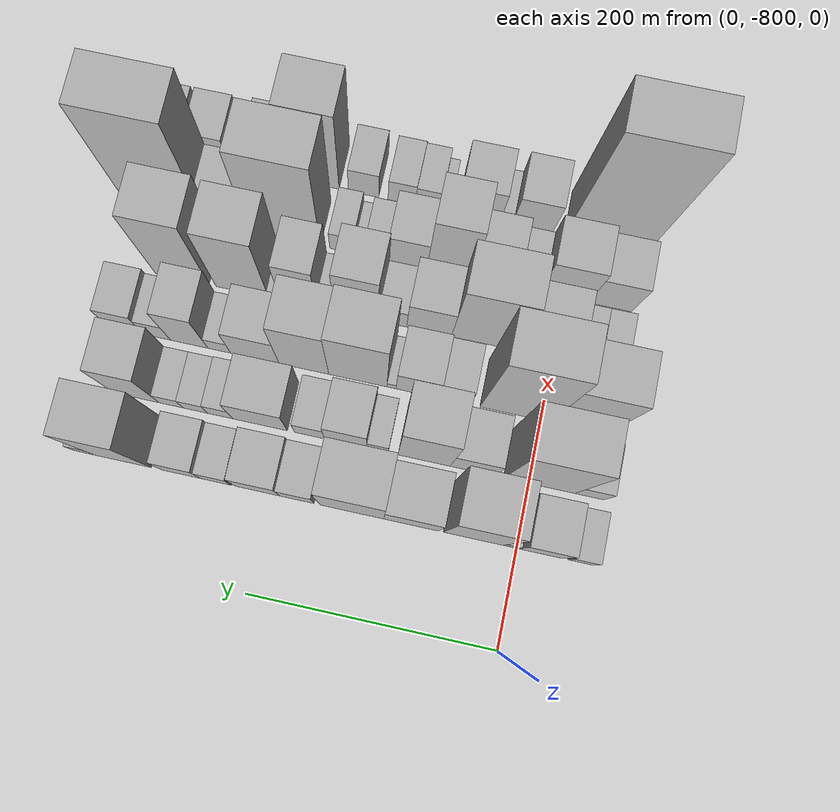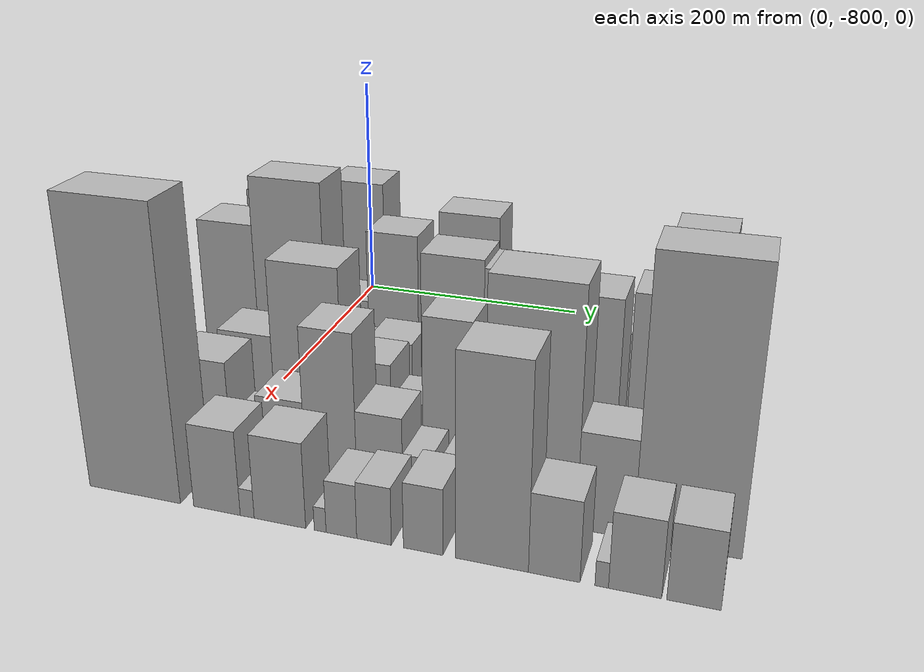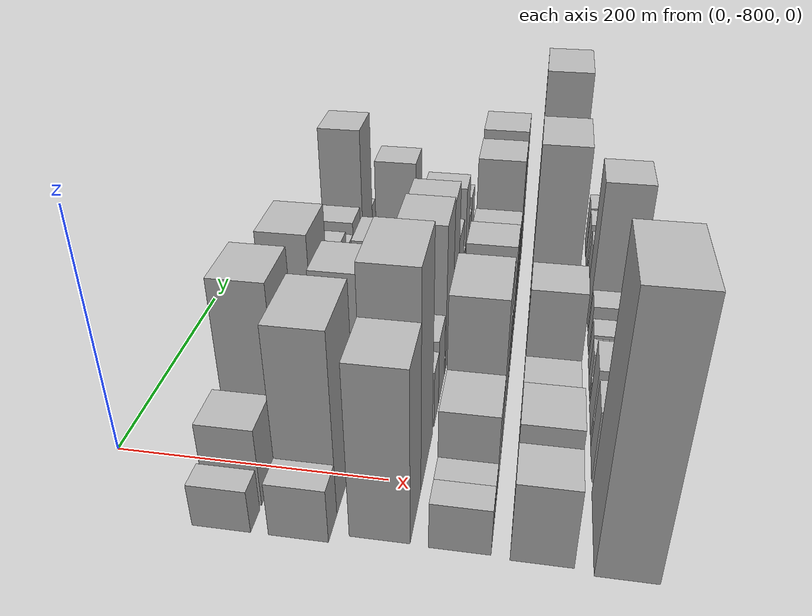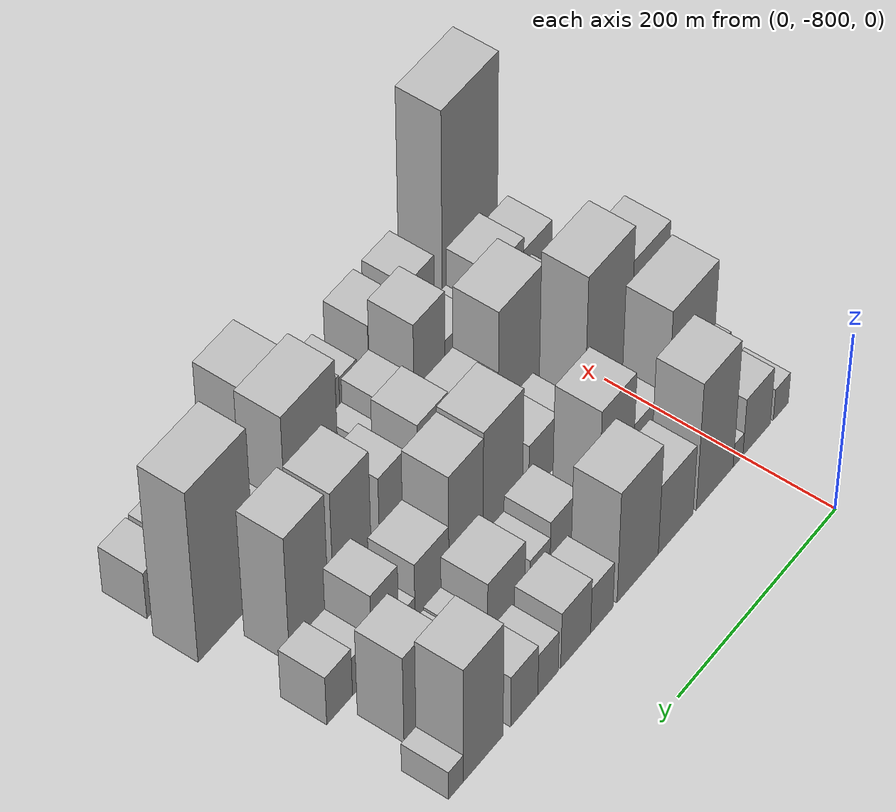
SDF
<sdf version="1.6">
 <world name="default">
  <model name="building_1">
   <static>1</static>
   <pose>100.0000 -850.1678 0 0.000000 0.000000 0.000000</pose>
   <link name="link">
    <pose>0 0 18.00 0 0 0</pose>
    <collision name="collision"><geometry><box><size>40.0000 19.6644 36.0000</size></box></geometry></collision>
    <visual name="visual">
     <cast_shadows>0</cast_shadows>
     <geometry><box><size>40.0000 19.6644 36.0000</size></box></geometry>
     <material>
      <script>
       <uri>model://HANNAS_wall/materials/scripts</uri>
       <uri>model://HANNAS_wall/materials/textures</uri>
       <name>vrc/HANNAS_wall</name>
      </script>
     </material>
    </visual>
   </link>
  </model>
  <model name="building_2">
   <static>1</static>
   <pose>100.0000 -818.5363 0 0.000000 0.000000 0.000000</pose>
   <link name="link">
    <pose>0 0 33.00 0 0 0</pose>
    <collision name="collision"><geometry><box><size>40.0000 35.5986 66.0000</size></box></geometry></collision>
    <visual name="visual">
     <cast_shadows>0</cast_shadows>
     <geometry><box><size>40.0000 35.5986 66.0000</size></box></geometry>
     <material>
      <script>
       <uri>model://HANNAS_wall/materials/scripts</uri>
       <uri>model://HANNAS_wall/materials/textures</uri>
       <name>vrc/HANNAS_wall</name>
      </script>
     </material>
    </visual>
   </link>
  </model>
  <model name="building_3">
   <static>1</static>
   <pose>100.0000 -794.4167 0 0.000000 0.000000 0.000000</pose>
   <link name="link">
    <pose>0 0 13.50 0 0 0</pose>
    <collision name="collision"><geometry><box><size>40.0000 12.6405 27.0000</size></box></geometry></collision>
    <visual name="visual">
     <cast_shadows>0</cast_shadows>
     <geometry><box><size>40.0000 12.6405 27.0000</size></box></geometry>
     <material>
      <script>
       <uri>model://HANNAS_wall/materials/scripts</uri>
       <uri>model://HANNAS_wall/materials/textures</uri>
       <name>vrc/HANNAS_wall</name>
      </script>
     </material>
    </visual>
   </link>
  </model>
  <model name="building_4">
   <static>1</static>
   <pose>100.0000 -764.4303 0 0.000000 0.000000 0.000000</pose>
   <link name="link">
    <pose>0 0 73.50 0 0 0</pose>
    <collision name="collision"><geometry><box><size>40.0000 47.3323 147.0000</size></box></geometry></collision>
    <visual name="visual">
     <cast_shadows>0</cast_shadows>
     <geometry><box><size>40.0000 47.3323 147.0000</size></box></geometry>
     <material>
      <script>
       <uri>model://HANNAS_wall/materials/scripts</uri>
       <uri>model://HANNAS_wall/materials/textures</uri>
       <name>vrc/HANNAS_wall</name>
      </script>
     </material>
    </visual>
   </link>
  </model>
  <model name="building_5">
   <static>1</static>
   <pose>100.0000 -714.7131 0 0.000000 0.000000 0.000000</pose>
   <link name="link">
    <pose>0 0 40.50 0 0 0</pose>
    <collision name="collision"><geometry><box><size>40.0000 44.1021 81.0000</size></box></geometry></collision>
    <visual name="visual">
     <cast_shadows>0</cast_shadows>
     <geometry><box><size>40.0000 44.1021 81.0000</size></box></geometry>
     <material>
      <script>
       <uri>model://HANNAS_wall/materials/scripts</uri>
       <uri>model://HANNAS_wall/materials/textures</uri>
       <name>vrc/HANNAS_wall</name>
      </script>
     </material>
    </visual>
   </link>
  </model>
  <model name="building_6">
   <static>1</static>
   <pose>100.0000 -666.9803 0 0.000000 0.000000 0.000000</pose>
   <link name="link">
    <pose>0 0 64.50 0 0 0</pose>
    <collision name="collision"><geometry><box><size>40.0000 51.3636 129.0000</size></box></geometry></collision>
    <visual name="visual">
     <cast_shadows>0</cast_shadows>
     <geometry><box><size>40.0000 51.3636 129.0000</size></box></geometry>
     <material>
      <script>
       <uri>model://HANNAS_wall/materials/scripts</uri>
       <uri>model://HANNAS_wall/materials/textures</uri>
       <name>vrc/HANNAS_wall</name>
      </script>
     </material>
    </visual>
   </link>
  </model>
  <model name="building_7">
   <static>1</static>
   <pose>100.0000 -622.5360 0 0.000000 0.000000 0.000000</pose>
   <link name="link">
    <pose>0 0 27.00 0 0 0</pose>
    <collision name="collision"><geometry><box><size>40.0000 27.5249 54.0000</size></box></geometry></collision>
    <visual name="visual">
     <cast_shadows>0</cast_shadows>
     <geometry><box><size>40.0000 27.5249 54.0000</size></box></geometry>
     <material>
      <script>
       <uri>model://HANNAS_wall/materials/scripts</uri>
       <uri>model://HANNAS_wall/materials/textures</uri>
       <name>vrc/HANNAS_wall</name>
      </script>
     </material>
    </visual>
   </link>
  </model>
  <model name="building_8">
   <static>1</static>
   <pose>100.0000 -590.5916 0 0.000000 0.000000 0.000000</pose>
   <link name="link">
    <pose>0 0 33.00 0 0 0</pose>
    <collision name="collision"><geometry><box><size>40.0000 36.3639 66.0000</size></box></geometry></collision>
    <visual name="visual">
     <cast_shadows>0</cast_shadows>
     <geometry><box><size>40.0000 36.3639 66.0000</size></box></geometry>
     <material>
      <script>
       <uri>model://HANNAS_wall/materials/scripts</uri>
       <uri>model://HANNAS_wall/materials/textures</uri>
       <name>vrc/HANNAS_wall</name>
      </script>
     </material>
    </visual>
   </link>
  </model>
  <model name="building_9">
   <static>1</static>
   <pose>100.0000 -557.1336 0 0.000000 0.000000 0.000000</pose>
   <link name="link">
    <pose>0 0 24.00 0 0 0</pose>
    <collision name="collision"><geometry><box><size>40.0000 24.5523 48.0000</size></box></geometry></collision>
    <visual name="visual">
     <cast_shadows>0</cast_shadows>
     <geometry><box><size>40.0000 24.5523 48.0000</size></box></geometry>
     <material>
      <script>
       <uri>model://HANNAS_wall/materials/scripts</uri>
       <uri>model://HANNAS_wall/materials/textures</uri>
       <name>vrc/HANNAS_wall</name>
      </script>
     </material>
    </visual>
   </link>
  </model>
  <model name="building_10">
   <static>1</static>
   <pose>100.0000 -528.5953 0 0.000000 0.000000 0.000000</pose>
   <link name="link">
    <pose>0 0 30.00 0 0 0</pose>
    <collision name="collision"><geometry><box><size>40.0000 32.5243 60.0000</size></box></geometry></collision>
    <visual name="visual">
     <cast_shadows>0</cast_shadows>
     <geometry><box><size>40.0000 32.5243 60.0000</size></box></geometry>
     <material>
      <script>
       <uri>model://HANNAS_wall/materials/scripts</uri>
       <uri>model://HANNAS_wall/materials/textures</uri>
       <name>vrc/HANNAS_wall</name>
      </script>
     </material>
    </visual>
   </link>
  </model>
  <model name="building_11">
   <static>1</static>
   <pose>100.0000 -480.1072 0 0.000000 0.000000 0.000000</pose>
   <link name="link">
    <pose>0 0 67.50 0 0 0</pose>
    <collision name="collision"><geometry><box><size>40.0000 46.4518 135.0000</size></box></geometry></collision>
    <visual name="visual">
     <cast_shadows>0</cast_shadows>
     <geometry><box><size>40.0000 46.4518 135.0000</size></box></geometry>
     <material>
      <script>
       <uri>model://HANNAS_wall/materials/scripts</uri>
       <uri>model://HANNAS_wall/materials/textures</uri>
       <name>vrc/HANNAS_wall</name>
      </script>
     </material>
    </visual>
   </link>
  </model>
  <model name="building_12">
   <static>1</static>
   <pose>100.0000 -448.1927 0 0.000000 0.000000 0.000000</pose>
   <link name="link">
    <pose>0 0 16.50 0 0 0</pose>
    <collision name="collision"><geometry><box><size>40.0000 17.3773 33.0000</size></box></geometry></collision>
    <visual name="visual">
     <cast_shadows>0</cast_shadows>
     <geometry><box><size>40.0000 17.3773 33.0000</size></box></geometry>
     <material>
      <script>
       <uri>model://HANNAS_wall/materials/scripts</uri>
       <uri>model://HANNAS_wall/materials/textures</uri>
       <name>vrc/HANNAS_wall</name>
      </script>
     </material>
    </visual>
   </link>
  </model>
  <model name="building_52">
   <static>1</static>
   <pose>152.0000 -848.3504 0 0.000000 0.000000 0.000000</pose>
   <link name="link">
    <pose>0 0 22.50 0 0 0</pose>
    <collision name="collision"><geometry><box><size>40.0000 23.2992 45.0000</size></box></geometry></collision>
    <visual name="visual">
     <cast_shadows>0</cast_shadows>
     <geometry><box><size>40.0000 23.2992 45.0000</size></box></geometry>
     <material>
      <script>
       <uri>model://HANNAS_wall/materials/scripts</uri>
       <uri>model://HANNAS_wall/materials/textures</uri>
       <name>vrc/HANNAS_wall</name>
      </script>
     </material>
    </visual>
   </link>
  </model>
  <model name="building_53">
   <static>1</static>
   <pose>152.0000 -807.8671 0 0.000000 0.000000 0.000000</pose>
   <link name="link">
    <pose>0 0 75.00 0 0 0</pose>
    <collision name="collision"><geometry><box><size>40.0000 57.6673 150.0000</size></box></geometry></collision>
    <visual name="visual">
     <cast_shadows>0</cast_shadows>
     <geometry><box><size>40.0000 57.6673 150.0000</size></box></geometry>
     <material>
      <script>
       <uri>model://HANNAS_wall/materials/scripts</uri>
       <uri>model://HANNAS_wall/materials/textures</uri>
       <name>vrc/HANNAS_wall</name>
      </script>
     </material>
    </visual>
   </link>
  </model>
  <model name="building_54">
   <static>1</static>
   <pose>152.0000 -753.8461 0 0.000000 0.000000 0.000000</pose>
   <link name="link">
    <pose>0 0 33.00 0 0 0</pose>
    <collision name="collision"><geometry><box><size>40.0000 36.3747 66.0000</size></box></geometry></collision>
    <visual name="visual">
     <cast_shadows>0</cast_shadows>
     <geometry><box><size>40.0000 36.3747 66.0000</size></box></geometry>
     <material>
      <script>
       <uri>model://HANNAS_wall/materials/scripts</uri>
       <uri>model://HANNAS_wall/materials/textures</uri>
       <name>vrc/HANNAS_wall</name>
      </script>
     </material>
    </visual>
   </link>
  </model>
  <model name="building_55">
   <static>1</static>
   <pose>152.0000 -714.4070 0 0.000000 0.000000 0.000000</pose>
   <link name="link">
    <pose>0 0 63.00 0 0 0</pose>
    <collision name="collision"><geometry><box><size>40.0000 42.5034 126.0000</size></box></geometry></collision>
    <visual name="visual">
     <cast_shadows>0</cast_shadows>
     <geometry><box><size>40.0000 42.5034 126.0000</size></box></geometry>
     <material>
      <script>
       <uri>model://HANNAS_wall/materials/scripts</uri>
       <uri>model://HANNAS_wall/materials/textures</uri>
       <name>vrc/HANNAS_wall</name>
      </script>
     </material>
    </visual>
   </link>
  </model>
  <model name="building_56">
   <static>1</static>
   <pose>152.0000 -676.4483 0 0.000000 0.000000 0.000000</pose>
   <link name="link">
    <pose>0 0 15.00 0 0 0</pose>
    <collision name="collision"><geometry><box><size>40.0000 17.4140 30.0000</size></box></geometry></collision>
    <visual name="visual">
     <cast_shadows>0</cast_shadows>
     <geometry><box><size>40.0000 17.4140 30.0000</size></box></geometry>
     <material>
      <script>
       <uri>model://HANNAS_wall/materials/scripts</uri>
       <uri>model://HANNAS_wall/materials/textures</uri>
       <name>vrc/HANNAS_wall</name>
      </script>
     </material>
    </visual>
   </link>
  </model>
  <model name="building_57">
   <static>1</static>
   <pose>152.0000 -650.3574 0 0.000000 0.000000 0.000000</pose>
   <link name="link">
    <pose>0 0 31.50 0 0 0</pose>
    <collision name="collision"><geometry><box><size>40.0000 34.7679 63.0000</size></box></geometry></collision>
    <visual name="visual">
     <cast_shadows>0</cast_shadows>
     <geometry><box><size>40.0000 34.7679 63.0000</size></box></geometry>
     <material>
      <script>
       <uri>model://HANNAS_wall/materials/scripts</uri>
       <uri>model://HANNAS_wall/materials/textures</uri>
       <name>vrc/HANNAS_wall</name>
      </script>
     </material>
    </visual>
   </link>
  </model>
  <model name="building_58">
   <static>1</static>
   <pose>152.0000 -620.7284 0 0.000000 0.000000 0.000000</pose>
   <link name="link">
    <pose>0 0 22.50 0 0 0</pose>
    <collision name="collision"><geometry><box><size>40.0000 24.4899 45.0000</size></box></geometry></collision>
    <visual name="visual">
     <cast_shadows>0</cast_shadows>
     <geometry><box><size>40.0000 24.4899 45.0000</size></box></geometry>
     <material>
      <script>
       <uri>model://HANNAS_wall/materials/scripts</uri>
       <uri>model://HANNAS_wall/materials/textures</uri>
       <name>vrc/HANNAS_wall</name>
      </script>
     </material>
    </visual>
   </link>
  </model>
  <model name="building_59">
   <static>1</static>
   <pose>152.0000 -579.9967 0 0.000000 0.000000 0.000000</pose>
   <link name="link">
    <pose>0 0 37.50 0 0 0</pose>
    <collision name="collision"><geometry><box><size>40.0000 44.9736 75.0000</size></box></geometry></collision>
    <visual name="visual">
     <cast_shadows>0</cast_shadows>
     <geometry><box><size>40.0000 44.9736 75.0000</size></box></geometry>
     <material>
      <script>
       <uri>model://HANNAS_wall/materials/scripts</uri>
       <uri>model://HANNAS_wall/materials/textures</uri>
       <name>vrc/HANNAS_wall</name>
      </script>
     </material>
    </visual>
   </link>
  </model>
  <model name="building_60">
   <static>1</static>
   <pose>152.0000 -547.1147 0 0.000000 0.000000 0.000000</pose>
   <link name="link">
    <pose>0 0 19.50 0 0 0</pose>
    <collision name="collision"><geometry><box><size>40.0000 20.7903 39.0000</size></box></geometry></collision>
    <visual name="visual">
     <cast_shadows>0</cast_shadows>
     <geometry><box><size>40.0000 20.7903 39.0000</size></box></geometry>
     <material>
      <script>
       <uri>model://HANNAS_wall/materials/scripts</uri>
       <uri>model://HANNAS_wall/materials/textures</uri>
       <name>vrc/HANNAS_wall</name>
      </script>
     </material>
    </visual>
   </link>
  </model>
  <model name="building_61">
   <static>1</static>
   <pose>152.0000 -526.5225 0 0.000000 0.000000 0.000000</pose>
   <link name="link">
    <pose>0 0 18.00 0 0 0</pose>
    <collision name="collision"><geometry><box><size>40.0000 20.3941 36.0000</size></box></geometry></collision>
    <visual name="visual">
     <cast_shadows>0</cast_shadows>
     <geometry><box><size>40.0000 20.3941 36.0000</size></box></geometry>
     <material>
      <script>
       <uri>model://HANNAS_wall/materials/scripts</uri>
       <uri>model://HANNAS_wall/materials/textures</uri>
       <name>vrc/HANNAS_wall</name>
      </script>
     </material>
    </visual>
   </link>
  </model>
  <model name="building_62">
   <static>1</static>
   <pose>152.0000 -506.3344 0 0.000000 0.000000 0.000000</pose>
   <link name="link">
    <pose>0 0 18.00 0 0 0</pose>
    <collision name="collision"><geometry><box><size>40.0000 19.9822 36.0000</size></box></geometry></collision>
    <visual name="visual">
     <cast_shadows>0</cast_shadows>
     <geometry><box><size>40.0000 19.9822 36.0000</size></box></geometry>
     <material>
      <script>
       <uri>model://HANNAS_wall/materials/scripts</uri>
       <uri>model://HANNAS_wall/materials/textures</uri>
       <name>vrc/HANNAS_wall</name>
      </script>
     </material>
    </visual>
   </link>
  </model>
  <model name="building_63">
   <static>1</static>
   <pose>152.0000 -477.5877 0 0.000000 0.000000 0.000000</pose>
   <link name="link">
    <pose>0 0 51.00 0 0 0</pose>
    <collision name="collision"><geometry><box><size>40.0000 37.5112 102.0000</size></box></geometry></collision>
    <visual name="visual">
     <cast_shadows>0</cast_shadows>
     <geometry><box><size>40.0000 37.5112 102.0000</size></box></geometry>
     <material>
      <script>
       <uri>model://HANNAS_wall/materials/scripts</uri>
       <uri>model://HANNAS_wall/materials/textures</uri>
       <name>vrc/HANNAS_wall</name>
      </script>
     </material>
    </visual>
   </link>
  </model>
  <model name="building_98">
   <static>1</static>
   <pose>204.0000 -829.9922 0 0.000000 0.000000 0.000000</pose>
   <link name="link">
    <pose>0 0 70.50 0 0 0</pose>
    <collision name="collision"><geometry><box><size>40.0000 46.0157 141.0000</size></box></geometry></collision>
    <visual name="visual">
     <cast_shadows>0</cast_shadows>
     <geometry><box><size>40.0000 46.0157 141.0000</size></box></geometry>
     <material>
      <script>
       <uri>model://HANNAS_wall/materials/scripts</uri>
       <uri>model://HANNAS_wall/materials/textures</uri>
       <name>vrc/HANNAS_wall</name>
      </script>
     </material>
    </visual>
   </link>
  </model>
  <model name="building_99">
   <static>1</static>
   <pose>204.0000 -778.2849 0 0.000000 0.000000 0.000000</pose>
   <link name="link">
    <pose>0 0 90.00 0 0 0</pose>
    <collision name="collision"><geometry><box><size>40.0000 57.3989 180.0000</size></box></geometry></collision>
    <visual name="visual">
     <cast_shadows>0</cast_shadows>
     <geometry><box><size>40.0000 57.3989 180.0000</size></box></geometry>
     <material>
      <script>
       <uri>model://HANNAS_wall/materials/scripts</uri>
       <uri>model://HANNAS_wall/materials/textures</uri>
       <name>vrc/HANNAS_wall</name>
      </script>
     </material>
    </visual>
   </link>
  </model>
  <model name="building_100">
   <static>1</static>
   <pose>204.0000 -728.6867 0 0.000000 0.000000 0.000000</pose>
   <link name="link">
    <pose>0 0 25.50 0 0 0</pose>
    <collision name="collision"><geometry><box><size>40.0000 25.7973 51.0000</size></box></geometry></collision>
    <visual name="visual">
     <cast_shadows>0</cast_shadows>
     <geometry><box><size>40.0000 25.7973 51.0000</size></box></geometry>
     <material>
      <script>
       <uri>model://HANNAS_wall/materials/scripts</uri>
       <uri>model://HANNAS_wall/materials/textures</uri>
       <name>vrc/HANNAS_wall</name>
      </script>
     </material>
    </visual>
   </link>
  </model>
  <model name="building_101">
   <static>1</static>
   <pose>204.0000 -698.0632 0 0.000000 0.000000 0.000000</pose>
   <link name="link">
    <pose>0 0 30.00 0 0 0</pose>
    <collision name="collision"><geometry><box><size>40.0000 35.4496 60.0000</size></box></geometry></collision>
    <visual name="visual">
     <cast_shadows>0</cast_shadows>
     <geometry><box><size>40.0000 35.4496 60.0000</size></box></geometry>
     <material>
      <script>
       <uri>model://HANNAS_wall/materials/scripts</uri>
       <uri>model://HANNAS_wall/materials/textures</uri>
       <name>vrc/HANNAS_wall</name>
      </script>
     </material>
    </visual>
   </link>
  </model>
  <model name="building_102">
   <static>1</static>
   <pose>204.0000 -676.5887 0 0.000000 0.000000 0.000000</pose>
   <link name="link">
    <pose>0 0 7.50 0 0 0</pose>
    <collision name="collision"><geometry><box><size>40.0000 7.4994 15.0000</size></box></geometry></collision>
    <visual name="visual">
     <cast_shadows>0</cast_shadows>
     <geometry><box><size>40.0000 7.4994 15.0000</size></box></geometry>
     <material>
      <script>
       <uri>model://HANNAS_wall/materials/scripts</uri>
       <uri>model://HANNAS_wall/materials/textures</uri>
       <name>vrc/HANNAS_wall</name>
      </script>
     </material>
    </visual>
   </link>
  </model>
  <model name="building_103">
   <static>1</static>
   <pose>204.0000 -648.7740 0 0.000000 0.000000 0.000000</pose>
   <link name="link">
    <pose>0 0 67.50 0 0 0</pose>
    <collision name="collision"><geometry><box><size>40.0000 48.1301 135.0000</size></box></geometry></collision>
    <visual name="visual">
     <cast_shadows>0</cast_shadows>
     <geometry><box><size>40.0000 48.1301 135.0000</size></box></geometry>
     <material>
      <script>
       <uri>model://HANNAS_wall/materials/scripts</uri>
       <uri>model://HANNAS_wall/materials/textures</uri>
       <name>vrc/HANNAS_wall</name>
      </script>
     </material>
    </visual>
   </link>
  </model>
  <model name="building_104">
   <static>1</static>
   <pose>204.0000 -604.0319 0 0.000000 0.000000 0.000000</pose>
   <link name="link">
    <pose>0 0 64.50 0 0 0</pose>
    <collision name="collision"><geometry><box><size>40.0000 41.3541 129.0000</size></box></geometry></collision>
    <visual name="visual">
     <cast_shadows>0</cast_shadows>
     <geometry><box><size>40.0000 41.3541 129.0000</size></box></geometry>
     <material>
      <script>
       <uri>model://HANNAS_wall/materials/scripts</uri>
       <uri>model://HANNAS_wall/materials/textures</uri>
       <name>vrc/HANNAS_wall</name>
      </script>
     </material>
    </visual>
   </link>
  </model>
  <model name="building_105">
   <static>1</static>
   <pose>204.0000 -563.1245 0 0.000000 0.000000 0.000000</pose>
   <link name="link">
    <pose>0 0 36.00 0 0 0</pose>
    <collision name="collision"><geometry><box><size>40.0000 40.4606 72.0000</size></box></geometry></collision>
    <visual name="visual">
     <cast_shadows>0</cast_shadows>
     <geometry><box><size>40.0000 40.4606 72.0000</size></box></geometry>
     <material>
      <script>
       <uri>model://HANNAS_wall/materials/scripts</uri>
       <uri>model://HANNAS_wall/materials/textures</uri>
       <name>vrc/HANNAS_wall</name>
      </script>
     </material>
    </visual>
   </link>
  </model>
  <model name="building_106">
   <static>1</static>
   <pose>204.0000 -533.3424 0 0.000000 0.000000 0.000000</pose>
   <link name="link">
    <pose>0 0 16.50 0 0 0</pose>
    <collision name="collision"><geometry><box><size>40.0000 19.1036 33.0000</size></box></geometry></collision>
    <visual name="visual">
     <cast_shadows>0</cast_shadows>
     <geometry><box><size>40.0000 19.1036 33.0000</size></box></geometry>
     <material>
      <script>
       <uri>model://HANNAS_wall/materials/scripts</uri>
       <uri>model://HANNAS_wall/materials/textures</uri>
       <name>vrc/HANNAS_wall</name>
      </script>
     </material>
    </visual>
   </link>
  </model>
  <model name="building_107">
   <static>1</static>
   <pose>204.0000 -508.0473 0 0.000000 0.000000 0.000000</pose>
   <link name="link">
    <pose>0 0 46.50 0 0 0</pose>
    <collision name="collision"><geometry><box><size>40.0000 31.4866 93.0000</size></box></geometry></collision>
    <visual name="visual">
     <cast_shadows>0</cast_shadows>
     <geometry><box><size>40.0000 31.4866 93.0000</size></box></geometry>
     <material>
      <script>
       <uri>model://HANNAS_wall/materials/scripts</uri>
       <uri>model://HANNAS_wall/materials/textures</uri>
       <name>vrc/HANNAS_wall</name>
      </script>
     </material>
    </visual>
   </link>
  </model>
  <model name="building_108">
   <static>1</static>
   <pose>204.0000 -480.8521 0 0.000000 0.000000 0.000000</pose>
   <link name="link">
    <pose>0 0 22.50 0 0 0</pose>
    <collision name="collision"><geometry><box><size>40.0000 22.9038 45.0000</size></box></geometry></collision>
    <visual name="visual">
     <cast_shadows>0</cast_shadows>
     <geometry><box><size>40.0000 22.9038 45.0000</size></box></geometry>
     <material>
      <script>
       <uri>model://HANNAS_wall/materials/scripts</uri>
       <uri>model://HANNAS_wall/materials/textures</uri>
       <name>vrc/HANNAS_wall</name>
      </script>
     </material>
    </visual>
   </link>
  </model>
  <model name="building_109">
   <static>1</static>
   <pose>204.0000 -454.4886 0 0.000000 0.000000 0.000000</pose>
   <link name="link">
    <pose>0 0 28.50 0 0 0</pose>
    <collision name="collision"><geometry><box><size>40.0000 29.8233 57.0000</size></box></geometry></collision>
    <visual name="visual">
     <cast_shadows>0</cast_shadows>
     <geometry><box><size>40.0000 29.8233 57.0000</size></box></geometry>
     <material>
      <script>
       <uri>model://HANNAS_wall/materials/scripts</uri>
       <uri>model://HANNAS_wall/materials/textures</uri>
       <name>vrc/HANNAS_wall</name>
      </script>
     </material>
    </visual>
   </link>
  </model>
  <model name="building_147">
   <static>1</static>
   <pose>256.0000 -843.4149 0 0.000000 0.000000 0.000000</pose>
   <link name="link">
    <pose>0 0 19.50 0 0 0</pose>
    <collision name="collision"><geometry><box><size>40.0000 21.1702 39.0000</size></box></geometry></collision>
    <visual name="visual">
     <cast_shadows>0</cast_shadows>
     <geometry><box><size>40.0000 21.1702 39.0000</size></box></geometry>
     <material>
      <script>
       <uri>model://HANNAS_wall/materials/scripts</uri>
       <uri>model://HANNAS_wall/materials/textures</uri>
       <name>vrc/HANNAS_wall</name>
      </script>
     </material>
    </visual>
   </link>
  </model>
  <model name="building_148">
   <static>1</static>
   <pose>256.0000 -822.8124 0 0.000000 0.000000 0.000000</pose>
   <link name="link">
    <pose>0 0 19.50 0 0 0</pose>
    <collision name="collision"><geometry><box><size>40.0000 20.0347 39.0000</size></box></geometry></collision>
    <visual name="visual">
     <cast_shadows>0</cast_shadows>
     <geometry><box><size>40.0000 20.0347 39.0000</size></box></geometry>
     <material>
      <script>
       <uri>model://HANNAS_wall/materials/scripts</uri>
       <uri>model://HANNAS_wall/materials/textures</uri>
       <name>vrc/HANNAS_wall</name>
      </script>
     </material>
    </visual>
   </link>
  </model>
  <model name="building_149">
   <static>1</static>
   <pose>256.0000 -791.3528 0 0.000000 0.000000 0.000000</pose>
   <link name="link">
    <pose>0 0 39.00 0 0 0</pose>
    <collision name="collision"><geometry><box><size>40.0000 42.8846 78.0000</size></box></geometry></collision>
    <visual name="visual">
     <cast_shadows>0</cast_shadows>
     <geometry><box><size>40.0000 42.8846 78.0000</size></box></geometry>
     <material>
      <script>
       <uri>model://HANNAS_wall/materials/scripts</uri>
       <uri>model://HANNAS_wall/materials/textures</uri>
       <name>vrc/HANNAS_wall</name>
      </script>
     </material>
    </visual>
   </link>
  </model>
  <model name="building_150">
   <static>1</static>
   <pose>256.0000 -742.7159 0 0.000000 0.000000 0.000000</pose>
   <link name="link">
    <pose>0 0 69.00 0 0 0</pose>
    <collision name="collision"><geometry><box><size>40.0000 54.3893 138.0000</size></box></geometry></collision>
    <visual name="visual">
     <cast_shadows>0</cast_shadows>
     <geometry><box><size>40.0000 54.3893 138.0000</size></box></geometry>
     <material>
      <script>
       <uri>model://HANNAS_wall/materials/scripts</uri>
       <uri>model://HANNAS_wall/materials/textures</uri>
       <name>vrc/HANNAS_wall</name>
      </script>
     </material>
    </visual>
   </link>
  </model>
  <model name="building_151">
   <static>1</static>
   <pose>256.0000 -696.8389 0 0.000000 0.000000 0.000000</pose>
   <link name="link">
    <pose>0 0 34.50 0 0 0</pose>
    <collision name="collision"><geometry><box><size>40.0000 37.3646 69.0000</size></box></geometry></collision>
    <visual name="visual">
     <cast_shadows>0</cast_shadows>
     <geometry><box><size>40.0000 37.3646 69.0000</size></box></geometry>
     <material>
      <script>
       <uri>model://HANNAS_wall/materials/scripts</uri>
       <uri>model://HANNAS_wall/materials/textures</uri>
       <name>vrc/HANNAS_wall</name>
      </script>
     </material>
    </visual>
   </link>
  </model>
  <model name="building_152">
   <static>1</static>
   <pose>256.0000 -666.3272 0 0.000000 0.000000 0.000000</pose>
   <link name="link">
    <pose>0 0 21.00 0 0 0</pose>
    <collision name="collision"><geometry><box><size>40.0000 23.6589 42.0000</size></box></geometry></collision>
    <visual name="visual">
     <cast_shadows>0</cast_shadows>
     <geometry><box><size>40.0000 23.6589 42.0000</size></box></geometry>
     <material>
      <script>
       <uri>model://HANNAS_wall/materials/scripts</uri>
       <uri>model://HANNAS_wall/materials/textures</uri>
       <name>vrc/HANNAS_wall</name>
      </script>
     </material>
    </visual>
   </link>
  </model>
  <model name="building_153">
   <static>1</static>
   <pose>256.0000 -636.1584 0 0.000000 0.000000 0.000000</pose>
   <link name="link">
    <pose>0 0 55.50 0 0 0</pose>
    <collision name="collision"><geometry><box><size>40.0000 36.6788 111.0000</size></box></geometry></collision>
    <visual name="visual">
     <cast_shadows>0</cast_shadows>
     <geometry><box><size>40.0000 36.6788 111.0000</size></box></geometry>
     <material>
      <script>
       <uri>model://HANNAS_wall/materials/scripts</uri>
       <uri>model://HANNAS_wall/materials/textures</uri>
       <name>vrc/HANNAS_wall</name>
      </script>
     </material>
    </visual>
   </link>
  </model>
  <model name="building_154">
   <static>1</static>
   <pose>256.0000 -608.9277 0 0.000000 0.000000 0.000000</pose>
   <link name="link">
    <pose>0 0 13.50 0 0 0</pose>
    <collision name="collision"><geometry><box><size>40.0000 11.7826 27.0000</size></box></geometry></collision>
    <visual name="visual">
     <cast_shadows>0</cast_shadows>
     <geometry><box><size>40.0000 11.7826 27.0000</size></box></geometry>
     <material>
      <script>
       <uri>model://HANNAS_wall/materials/scripts</uri>
       <uri>model://HANNAS_wall/materials/textures</uri>
       <name>vrc/HANNAS_wall</name>
      </script>
     </material>
    </visual>
   </link>
  </model>
  <model name="building_155">
   <static>1</static>
   <pose>256.0000 -587.4439 0 0.000000 0.000000 0.000000</pose>
   <link name="link">
    <pose>0 0 49.50 0 0 0</pose>
    <collision name="collision"><geometry><box><size>40.0000 31.1850 99.0000</size></box></geometry></collision>
    <visual name="visual">
     <cast_shadows>0</cast_shadows>
     <geometry><box><size>40.0000 31.1850 99.0000</size></box></geometry>
     <material>
      <script>
       <uri>model://HANNAS_wall/materials/scripts</uri>
       <uri>model://HANNAS_wall/materials/textures</uri>
       <name>vrc/HANNAS_wall</name>
      </script>
     </material>
    </visual>
   </link>
  </model>
  <model name="building_156">
   <static>1</static>
   <pose>256.0000 -566.9511 0 0.000000 0.000000 0.000000</pose>
   <link name="link">
    <pose>0 0 10.50 0 0 0</pose>
    <collision name="collision"><geometry><box><size>40.0000 9.8008 21.0000</size></box></geometry></collision>
    <visual name="visual">
     <cast_shadows>0</cast_shadows>
     <geometry><box><size>40.0000 9.8008 21.0000</size></box></geometry>
     <material>
      <script>
       <uri>model://HANNAS_wall/materials/scripts</uri>
       <uri>model://HANNAS_wall/materials/textures</uri>
       <name>vrc/HANNAS_wall</name>
      </script>
     </material>
    </visual>
   </link>
  </model>
  <model name="building_157">
   <static>1</static>
   <pose>256.0000 -539.8246 0 0.000000 0.000000 0.000000</pose>
   <link name="link">
    <pose>0 0 70.50 0 0 0</pose>
    <collision name="collision"><geometry><box><size>40.0000 44.4521 141.0000</size></box></geometry></collision>
    <visual name="visual">
     <cast_shadows>0</cast_shadows>
     <geometry><box><size>40.0000 44.4521 141.0000</size></box></geometry>
     <material>
      <script>
       <uri>model://HANNAS_wall/materials/scripts</uri>
       <uri>model://HANNAS_wall/materials/textures</uri>
       <name>vrc/HANNAS_wall</name>
      </script>
     </material>
    </visual>
   </link>
  </model>
  <model name="building_158">
   <static>1</static>
   <pose>256.0000 -488.7720 0 0.000000 0.000000 0.000000</pose>
   <link name="link">
    <pose>0 0 73.50 0 0 0</pose>
    <collision name="collision"><geometry><box><size>40.0000 45.6532 147.0000</size></box></geometry></collision>
    <visual name="visual">
     <cast_shadows>0</cast_shadows>
     <geometry><box><size>40.0000 45.6532 147.0000</size></box></geometry>
     <material>
      <script>
       <uri>model://HANNAS_wall/materials/scripts</uri>
       <uri>model://HANNAS_wall/materials/textures</uri>
       <name>vrc/HANNAS_wall</name>
      </script>
     </material>
    </visual>
   </link>
  </model>
  <model name="building_196">
   <static>1</static>
   <pose>308.0000 -838.0782 0 0.000000 0.000000 0.000000</pose>
   <link name="link">
    <pose>0 0 33.00 0 0 0</pose>
    <collision name="collision"><geometry><box><size>40.0000 35.8436 66.0000</size></box></geometry></collision>
    <visual name="visual">
     <cast_shadows>0</cast_shadows>
     <geometry><box><size>40.0000 35.8436 66.0000</size></box></geometry>
     <material>
      <script>
       <uri>model://HANNAS_wall/materials/scripts</uri>
       <uri>model://HANNAS_wall/materials/textures</uri>
       <name>vrc/HANNAS_wall</name>
      </script>
     </material>
    </visual>
   </link>
  </model>
  <model name="building_197">
   <static>1</static>
   <pose>308.0000 -799.4406 0 0.000000 0.000000 0.000000</pose>
   <link name="link">
    <pose>0 0 40.50 0 0 0</pose>
    <collision name="collision"><geometry><box><size>40.0000 41.4316 81.0000</size></box></geometry></collision>
    <visual name="visual">
     <cast_shadows>0</cast_shadows>
     <geometry><box><size>40.0000 41.4316 81.0000</size></box></geometry>
     <material>
      <script>
       <uri>model://HANNAS_wall/materials/scripts</uri>
       <uri>model://HANNAS_wall/materials/textures</uri>
       <name>vrc/HANNAS_wall</name>
      </script>
     </material>
    </visual>
   </link>
  </model>
  <model name="building_198">
   <static>1</static>
   <pose>308.0000 -768.0801 0 0.000000 0.000000 0.000000</pose>
   <link name="link">
    <pose>0 0 19.50 0 0 0</pose>
    <collision name="collision"><geometry><box><size>40.0000 21.2894 39.0000</size></box></geometry></collision>
    <visual name="visual">
     <cast_shadows>0</cast_shadows>
     <geometry><box><size>40.0000 21.2894 39.0000</size></box></geometry>
     <material>
      <script>
       <uri>model://HANNAS_wall/materials/scripts</uri>
       <uri>model://HANNAS_wall/materials/textures</uri>
       <name>vrc/HANNAS_wall</name>
      </script>
     </material>
    </visual>
   </link>
  </model>
  <model name="building_199">
   <static>1</static>
   <pose>308.0000 -739.8631 0 0.000000 0.000000 0.000000</pose>
   <link name="link">
    <pose>0 0 30.00 0 0 0</pose>
    <collision name="collision"><geometry><box><size>40.0000 35.1445 60.0000</size></box></geometry></collision>
    <visual name="visual">
     <cast_shadows>0</cast_shadows>
     <geometry><box><size>40.0000 35.1445 60.0000</size></box></geometry>
     <material>
      <script>
       <uri>model://HANNAS_wall/materials/scripts</uri>
       <uri>model://HANNAS_wall/materials/textures</uri>
       <name>vrc/HANNAS_wall</name>
      </script>
     </material>
    </visual>
   </link>
  </model>
  <model name="building_200">
   <static>1</static>
   <pose>308.0000 -703.2876 0 0.000000 0.000000 0.000000</pose>
   <link name="link">
    <pose>0 0 58.50 0 0 0</pose>
    <collision name="collision"><geometry><box><size>40.0000 38.0066 117.0000</size></box></geometry></collision>
    <visual name="visual">
     <cast_shadows>0</cast_shadows>
     <geometry><box><size>40.0000 38.0066 117.0000</size></box></geometry>
     <material>
      <script>
       <uri>model://HANNAS_wall/materials/scripts</uri>
       <uri>model://HANNAS_wall/materials/textures</uri>
       <name>vrc/HANNAS_wall</name>
      </script>
     </material>
    </visual>
   </link>
  </model>
  <model name="building_201">
   <static>1</static>
   <pose>308.0000 -667.7190 0 0.000000 0.000000 0.000000</pose>
   <link name="link">
    <pose>0 0 30.00 0 0 0</pose>
    <collision name="collision"><geometry><box><size>40.0000 33.1306 60.0000</size></box></geometry></collision>
    <visual name="visual">
     <cast_shadows>0</cast_shadows>
     <geometry><box><size>40.0000 33.1306 60.0000</size></box></geometry>
     <material>
      <script>
       <uri>model://HANNAS_wall/materials/scripts</uri>
       <uri>model://HANNAS_wall/materials/textures</uri>
       <name>vrc/HANNAS_wall</name>
      </script>
     </material>
    </visual>
   </link>
  </model>
  <model name="building_202">
   <static>1</static>
   <pose>308.0000 -641.2562 0 0.000000 0.000000 0.000000</pose>
   <link name="link">
    <pose>0 0 16.50 0 0 0</pose>
    <collision name="collision"><geometry><box><size>40.0000 19.7948 33.0000</size></box></geometry></collision>
    <visual name="visual">
     <cast_shadows>0</cast_shadows>
     <geometry><box><size>40.0000 19.7948 33.0000</size></box></geometry>
     <material>
      <script>
       <uri>model://HANNAS_wall/materials/scripts</uri>
       <uri>model://HANNAS_wall/materials/textures</uri>
       <name>vrc/HANNAS_wall</name>
      </script>
     </material>
    </visual>
   </link>
  </model>
  <model name="building_203">
   <static>1</static>
   <pose>308.0000 -626.8595 0 0.000000 0.000000 0.000000</pose>
   <link name="link">
    <pose>0 0 9.00 0 0 0</pose>
    <collision name="collision"><geometry><box><size>40.0000 8.9987 18.0000</size></box></geometry></collision>
    <visual name="visual">
     <cast_shadows>0</cast_shadows>
     <geometry><box><size>40.0000 8.9987 18.0000</size></box></geometry>
     <material>
      <script>
       <uri>model://HANNAS_wall/materials/scripts</uri>
       <uri>model://HANNAS_wall/materials/textures</uri>
       <name>vrc/HANNAS_wall</name>
      </script>
     </material>
    </visual>
   </link>
  </model>
  <model name="building_204">
   <static>1</static>
   <pose>308.0000 -612.1663 0 0.000000 0.000000 0.000000</pose>
   <link name="link">
    <pose>0 0 19.50 0 0 0</pose>
    <collision name="collision"><geometry><box><size>40.0000 20.3878 39.0000</size></box></geometry></collision>
    <visual name="visual">
     <cast_shadows>0</cast_shadows>
     <geometry><box><size>40.0000 20.3878 39.0000</size></box></geometry>
     <material>
      <script>
       <uri>model://HANNAS_wall/materials/scripts</uri>
       <uri>model://HANNAS_wall/materials/textures</uri>
       <name>vrc/HANNAS_wall</name>
      </script>
     </material>
    </visual>
   </link>
  </model>
  <model name="building_205">
   <static>1</static>
   <pose>308.0000 -563.2639 0 0.000000 0.000000 0.000000</pose>
   <link name="link">
    <pose>0 0 85.50 0 0 0</pose>
    <collision name="collision"><geometry><box><size>40.0000 61.4171 171.0000</size></box></geometry></collision>
    <visual name="visual">
     <cast_shadows>0</cast_shadows>
     <geometry><box><size>40.0000 61.4171 171.0000</size></box></geometry>
     <material>
      <script>
       <uri>model://HANNAS_wall/materials/scripts</uri>
       <uri>model://HANNAS_wall/materials/textures</uri>
       <name>vrc/HANNAS_wall</name>
      </script>
     </material>
    </visual>
   </link>
  </model>
  <model name="building_206">
   <static>1</static>
   <pose>308.0000 -514.2001 0 0.000000 0.000000 0.000000</pose>
   <link name="link">
    <pose>0 0 36.00 0 0 0</pose>
    <collision name="collision"><geometry><box><size>40.0000 36.7105 72.0000</size></box></geometry></collision>
    <visual name="visual">
     <cast_shadows>0</cast_shadows>
     <geometry><box><size>40.0000 36.7105 72.0000</size></box></geometry>
     <material>
      <script>
       <uri>model://HANNAS_wall/materials/scripts</uri>
       <uri>model://HANNAS_wall/materials/textures</uri>
       <name>vrc/HANNAS_wall</name>
      </script>
     </material>
    </visual>
   </link>
  </model>
  <model name="building_207">
   <static>1</static>
   <pose>308.0000 -462.3571 0 0.000000 0.000000 0.000000</pose>
   <link name="link">
    <pose>0 0 99.00 0 0 0</pose>
    <collision name="collision"><geometry><box><size>40.0000 66.9756 198.0000</size></box></geometry></collision>
    <visual name="visual">
     <cast_shadows>0</cast_shadows>
     <geometry><box><size>40.0000 66.9756 198.0000</size></box></geometry>
     <material>
      <script>
       <uri>model://HANNAS_wall/materials/scripts</uri>
       <uri>model://HANNAS_wall/materials/textures</uri>
       <name>vrc/HANNAS_wall</name>
      </script>
     </material>
    </visual>
   </link>
  </model>
  <model name="building_245">
   <static>1</static>
   <pose>360.0000 -825.0630 0 0.000000 0.000000 0.000000</pose>
   <link name="link">
    <pose>0 0 106.50 0 0 0</pose>
    <collision name="collision"><geometry><box><size>40.0000 69.8739 213.0000</size></box></geometry></collision>
    <visual name="visual">
     <cast_shadows>0</cast_shadows>
     <geometry><box><size>40.0000 69.8739 213.0000</size></box></geometry>
     <material>
      <script>
       <uri>model://HANNAS_wall/materials/scripts</uri>
       <uri>model://HANNAS_wall/materials/textures</uri>
       <name>vrc/HANNAS_wall</name>
      </script>
     </material>
    </visual>
   </link>
  </model>
  <model name="building_246">
   <static>1</static>
   <pose>360.0000 -762.9529 0 0.000000 0.000000 0.000000</pose>
   <link name="link">
    <pose>0 0 31.50 0 0 0</pose>
    <collision name="collision"><geometry><box><size>40.0000 34.3465 63.0000</size></box></geometry></collision>
    <visual name="visual">
     <cast_shadows>0</cast_shadows>
     <geometry><box><size>40.0000 34.3465 63.0000</size></box></geometry>
     <material>
      <script>
       <uri>model://HANNAS_wall/materials/scripts</uri>
       <uri>model://HANNAS_wall/materials/textures</uri>
       <name>vrc/HANNAS_wall</name>
      </script>
     </material>
    </visual>
   </link>
  </model>
  <model name="building_247">
   <static>1</static>
   <pose>360.0000 -740.7179 0 0.000000 0.000000 0.000000</pose>
   <link name="link">
    <pose>0 0 10.50 0 0 0</pose>
    <collision name="collision"><geometry><box><size>40.0000 10.1233 21.0000</size></box></geometry></collision>
    <visual name="visual">
     <cast_shadows>0</cast_shadows>
     <geometry><box><size>40.0000 10.1233 21.0000</size></box></geometry>
     <material>
      <script>
       <uri>model://HANNAS_wall/materials/scripts</uri>
       <uri>model://HANNAS_wall/materials/textures</uri>
       <name>vrc/HANNAS_wall</name>
      </script>
     </material>
    </visual>
   </link>
  </model>
  <model name="building_248">
   <static>1</static>
   <pose>360.0000 -717.2910 0 0.000000 0.000000 0.000000</pose>
   <link name="link">
    <pose>0 0 31.50 0 0 0</pose>
    <collision name="collision"><geometry><box><size>40.0000 36.7306 63.0000</size></box></geometry></collision>
    <visual name="visual">
     <cast_shadows>0</cast_shadows>
     <geometry><box><size>40.0000 36.7306 63.0000</size></box></geometry>
     <material>
      <script>
       <uri>model://HANNAS_wall/materials/scripts</uri>
       <uri>model://HANNAS_wall/materials/textures</uri>
       <name>vrc/HANNAS_wall</name>
      </script>
     </material>
    </visual>
   </link>
  </model>
  <model name="building_249">
   <static>1</static>
   <pose>360.0000 -688.8316 0 0.000000 0.000000 0.000000</pose>
   <link name="link">
    <pose>0 0 9.00 0 0 0</pose>
    <collision name="collision"><geometry><box><size>40.0000 8.1881 18.0000</size></box></geometry></collision>
    <visual name="visual">
     <cast_shadows>0</cast_shadows>
     <geometry><box><size>40.0000 8.1881 18.0000</size></box></geometry>
     <material>
      <script>
       <uri>model://HANNAS_wall/materials/scripts</uri>
       <uri>model://HANNAS_wall/materials/textures</uri>
       <name>vrc/HANNAS_wall</name>
      </script>
     </material>
    </visual>
   </link>
  </model>
  <model name="building_250">
   <static>1</static>
   <pose>360.0000 -674.1835 0 0.000000 0.000000 0.000000</pose>
   <link name="link">
    <pose>0 0 19.50 0 0 0</pose>
    <collision name="collision"><geometry><box><size>40.0000 21.1082 39.0000</size></box></geometry></collision>
    <visual name="visual">
     <cast_shadows>0</cast_shadows>
     <geometry><box><size>40.0000 21.1082 39.0000</size></box></geometry>
     <material>
      <script>
       <uri>model://HANNAS_wall/materials/scripts</uri>
       <uri>model://HANNAS_wall/materials/textures</uri>
       <name>vrc/HANNAS_wall</name>
      </script>
     </material>
    </visual>
   </link>
  </model>
  <model name="building_251">
   <static>1</static>
   <pose>360.0000 -651.9099 0 0.000000 0.000000 0.000000</pose>
   <link name="link">
    <pose>0 0 21.00 0 0 0</pose>
    <collision name="collision"><geometry><box><size>40.0000 23.4389 42.0000</size></box></geometry></collision>
    <visual name="visual">
     <cast_shadows>0</cast_shadows>
     <geometry><box><size>40.0000 23.4389 42.0000</size></box></geometry>
     <material>
      <script>
       <uri>model://HANNAS_wall/materials/scripts</uri>
       <uri>model://HANNAS_wall/materials/textures</uri>
       <name>vrc/HANNAS_wall</name>
      </script>
     </material>
    </visual>
   </link>
  </model>
  <model name="building_252">
   <static>1</static>
   <pose>360.0000 -619.1995 0 0.000000 0.000000 0.000000</pose>
   <link name="link">
    <pose>0 0 24.00 0 0 0</pose>
    <collision name="collision"><geometry><box><size>40.0000 25.9819 48.0000</size></box></geometry></collision>
    <visual name="visual">
     <cast_shadows>0</cast_shadows>
     <geometry><box><size>40.0000 25.9819 48.0000</size></box></geometry>
     <material>
      <script>
       <uri>model://HANNAS_wall/materials/scripts</uri>
       <uri>model://HANNAS_wall/materials/textures</uri>
       <name>vrc/HANNAS_wall</name>
      </script>
     </material>
    </visual>
   </link>
  </model>
  <model name="building_253">
   <static>1</static>
   <pose>360.0000 -574.9418 0 0.000000 0.000000 0.000000</pose>
   <link name="link">
    <pose>0 0 72.00 0 0 0</pose>
    <collision name="collision"><geometry><box><size>40.0000 46.5337 144.0000</size></box></geometry></collision>
    <visual name="visual">
     <cast_shadows>0</cast_shadows>
     <geometry><box><size>40.0000 46.5337 144.0000</size></box></geometry>
     <material>
      <script>
       <uri>model://HANNAS_wall/materials/scripts</uri>
       <uri>model://HANNAS_wall/materials/textures</uri>
       <name>vrc/HANNAS_wall</name>
      </script>
     </material>
    </visual>
   </link>
  </model>
  <model name="building_254">
   <static>1</static>
   <pose>360.0000 -535.8353 0 0.000000 0.000000 0.000000</pose>
   <link name="link">
    <pose>0 0 28.50 0 0 0</pose>
    <collision name="collision"><geometry><box><size>40.0000 31.6792 57.0000</size></box></geometry></collision>
    <visual name="visual">
     <cast_shadows>0</cast_shadows>
     <geometry><box><size>40.0000 31.6792 57.0000</size></box></geometry>
     <material>
      <script>
       <uri>model://HANNAS_wall/materials/scripts</uri>
       <uri>model://HANNAS_wall/materials/textures</uri>
       <name>vrc/HANNAS_wall</name>
      </script>
     </material>
    </visual>
   </link>
  </model>
  <model name="building_255">
   <static>1</static>
   <pose>360.0000 -506.9222 0 0.000000 0.000000 0.000000</pose>
   <link name="link">
    <pose>0 0 9.00 0 0 0</pose>
    <collision name="collision"><geometry><box><size>40.0000 8.1470 18.0000</size></box></geometry></collision>
    <visual name="visual">
     <cast_shadows>0</cast_shadows>
     <geometry><box><size>40.0000 8.1470 18.0000</size></box></geometry>
     <material>
      <script>
       <uri>model://HANNAS_wall/materials/scripts</uri>
       <uri>model://HANNAS_wall/materials/textures</uri>
       <name>vrc/HANNAS_wall</name>
      </script>
     </material>
    </visual>
   </link>
  </model>
  <model name="building_256">
   <static>1</static>
   <pose>360.0000 -487.1911 0 0.000000 0.000000 0.000000</pose>
   <link name="link">
    <pose>0 0 27.00 0 0 0</pose>
    <collision name="collision"><geometry><box><size>40.0000 31.3153 54.0000</size></box></geometry></collision>
    <visual name="visual">
     <cast_shadows>0</cast_shadows>
     <geometry><box><size>40.0000 31.3153 54.0000</size></box></geometry>
     <material>
      <script>
       <uri>model://HANNAS_wall/materials/scripts</uri>
       <uri>model://HANNAS_wall/materials/textures</uri>
       <name>vrc/HANNAS_wall</name>
      </script>
     </material>
    </visual>
   </link>
  </model>
  <model name="building_257">
   <static>1</static>
   <pose>360.0000 -452.9246 0 0.000000 0.000000 0.000000</pose>
   <link name="link">
    <pose>0 0 27.00 0 0 0</pose>
    <collision name="collision"><geometry><box><size>40.0000 31.2177 54.0000</size></box></geometry></collision>
    <visual name="visual">
     <cast_shadows>0</cast_shadows>
     <geometry><box><size>40.0000 31.2177 54.0000</size></box></geometry>
     <material>
      <script>
       <uri>model://HANNAS_wall/materials/scripts</uri>
       <uri>model://HANNAS_wall/materials/textures</uri>
       <name>vrc/HANNAS_wall</name>
      </script>
     </material>
    </visual>
   </link>
  </model>
 </world>
</sdf>
